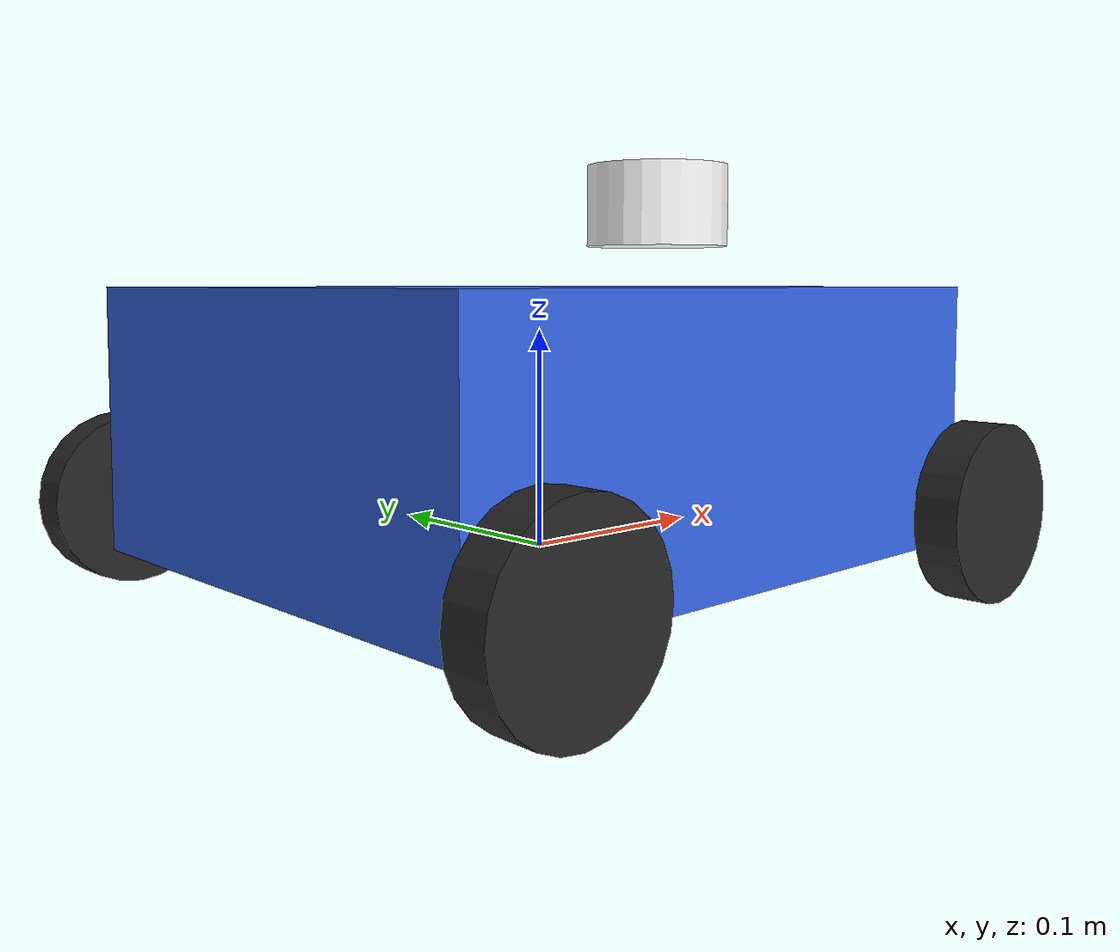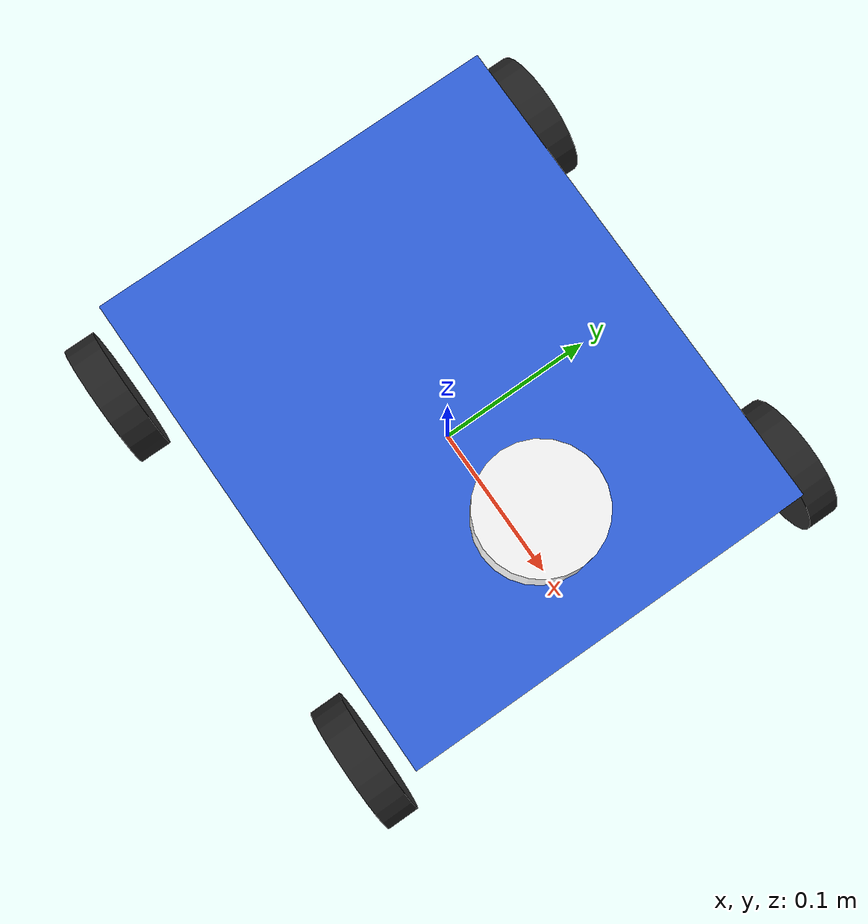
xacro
<?xml version="1.0"?>
<robot name="omni_robot" xmlns:xacro="http://www.ros.org/wiki/xacro">

  <material name="dark"><color rgba="0.15 0.15 0.15 1"/></material>
  <material name="gray"><color rgba="0.4 0.4 0.4 1"/></material>
  <material name="blue"><color rgba="0.2 0.4 0.9 1"/></material>
  <material name="white"><color rgba="1 1 1 1"/></material>

  <xacro:property name="body_len" value="0.3"/>
  <xacro:property name="body_wid" value="0.25"/>
  <xacro:property name="body_hgt" value="0.12"/>
  <xacro:property name="wheel_rad" value="0.04"/>
  <xacro:property name="wheel_len" value="0.02"/>
  <xacro:property name="wheel_x" value="0.13"/>
  <xacro:property name="wheel_y" value="0.15"/>
  <xacro:property name="wheel_z" value="-0.04"/>

  <!-- Base Footprint (for nav2) -->
  <link name="base_footprint"/>
  <joint name="base_joint" type="fixed">
    <parent link="base_footprint"/><child link="base_link"/>
    <origin xyz="0 0 0.06" rpy="0 0 0"/>
  </joint>

  <!-- Base Link -->
  <link name="base_link">
    <visual>
      <geometry><box size="${body_len} ${body_wid} ${body_hgt}"/></geometry>
      <material name="blue"/>
    </visual>
    <collision>
      <geometry><box size="${body_len} ${body_wid} ${body_hgt}"/></geometry>
    </collision>
    <inertial>
      <mass value="3.0"/>
      <inertia ixx="0.02" iyy="0.03" izz="0.03" ixy="0" ixz="0" iyz="0"/>
    </inertial>
  </link>

  <!-- 4 Mecanum Wheels -->
  <xacro:macro name="wheel" params="name x y">
    <joint name="${name}_wheel_joint" type="continuous">
      <parent link="base_link"/><child link="${name}_wheel_link"/>
      <origin xyz="${x} ${y} ${wheel_z}" rpy="1.57 0 0"/>
      <axis xyz="0 0 1"/>
      <limit effort="10" velocity="20"/>
    </joint>
    <link name="${name}_wheel_link">
      <visual><geometry><cylinder radius="${wheel_rad}" length="${wheel_len}"/></geometry><material name="dark"/></visual>
      <collision><geometry><cylinder radius="${wheel_rad}" length="${wheel_len}"/></geometry></collision>
      <inertial><mass value="0.05"/><inertia ixx="1e-5" iyy="1e-5" izz="1e-5" ixy="0" ixz="0" iyz="0"/></inertial>
    </link>
  </xacro:macro>

  <xacro:wheel name="fl" x="${wheel_x}"  y="${wheel_y}"/>
  <xacro:wheel name="fr" x="${wheel_x}"  y="${-wheel_y}"/>
  <xacro:wheel name="rl" x="${-wheel_x}" y="${wheel_y}"/>
  <xacro:wheel name="rr" x="${-wheel_x}" y="${-wheel_y}"/>

  <!-- Lidar -->
  <joint name="lidar_joint" type="fixed">
    <parent link="base_link"/><child link="lidar_link"/>
    <origin xyz="0.08 0 0.10" rpy="0 0 0"/>
  </joint>
  <link name="lidar_link">
    <visual><geometry><cylinder radius="0.035" length="0.04"/></geometry><material name="white"/></visual>
    <collision><geometry><cylinder radius="0.035" length="0.04"/></geometry></collision>
    <inertial><mass value="0.1"/><inertia ixx="1e-5" iyy="1e-5" izz="1e-5" ixy="0" ixz="0" iyz="0"/></inertial>
  </link>

  <!-- ══════════════════ GAZEBO ══════════════════ -->
  <gazebo>
    <plugin name="planar_move" filename="libgazebo_ros_planar_move.so">
      <ros><remapping>/odom:=odom</remapping></ros>
      <command_topic>cmd_vel</command_topic>
      <odometry_topic>odom</odometry_topic>
      <odometry_frame>odom</odometry_frame>
      <robot_base_frame>base_link</robot_base_frame>
      <publish_odom>true</publish_odom>
      <publish_tf>true</publish_tf>
      <broadcast_tf>true</broadcast_tf>
      <update_rate>50</update_rate>
    </plugin>
  </gazebo>

  <!-- Lidar sensor -->
  <gazebo reference="lidar_link">
    <sensor type="ray" name="lidar_sensor">
      <pose>0 0 0 0 0 0</pose>
      <visualize>true</visualize>
      <update_rate>20</update_rate>
      <ray>
        <scan>
          <horizontal><samples>360</samples><resolution>1</resolution>
            <min_angle>-3.14159</min_angle><max_angle>3.14159</max_angle></horizontal>
        </scan>
        <range><min>0.1</min><max>12.0</max><resolution>0.01</resolution></range>
      </ray>
      <plugin name="lidar_controller" filename="libgazebo_ros_ray_sensor.so">
        <ros><remapping>~/out:=scan</remapping></ros>
        <output_type>sensor_msgs/LaserScan</output_type>
        <frame_name>lidar_link</frame_name>
      </plugin>
    </sensor>
  </gazebo>

  <gazebo reference="base_link"><material>Gazebo/Blue</material></gazebo>
</robot>
